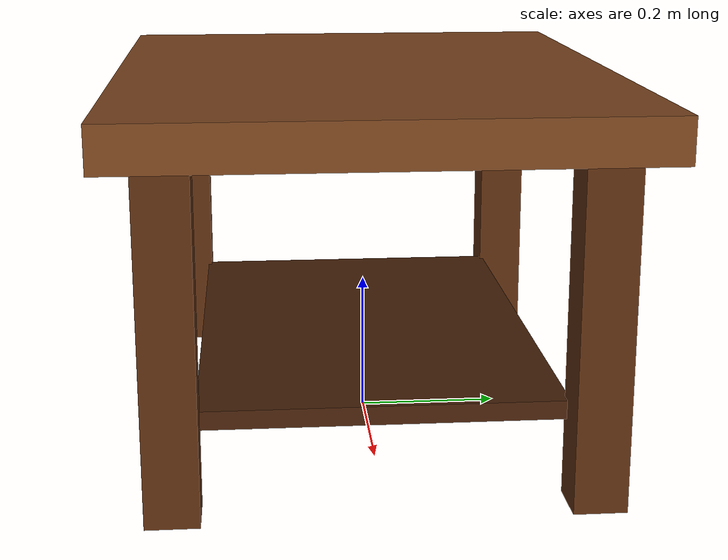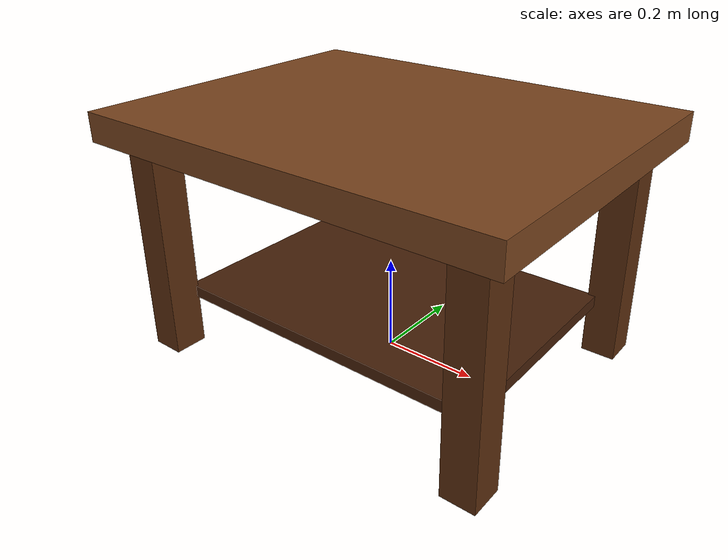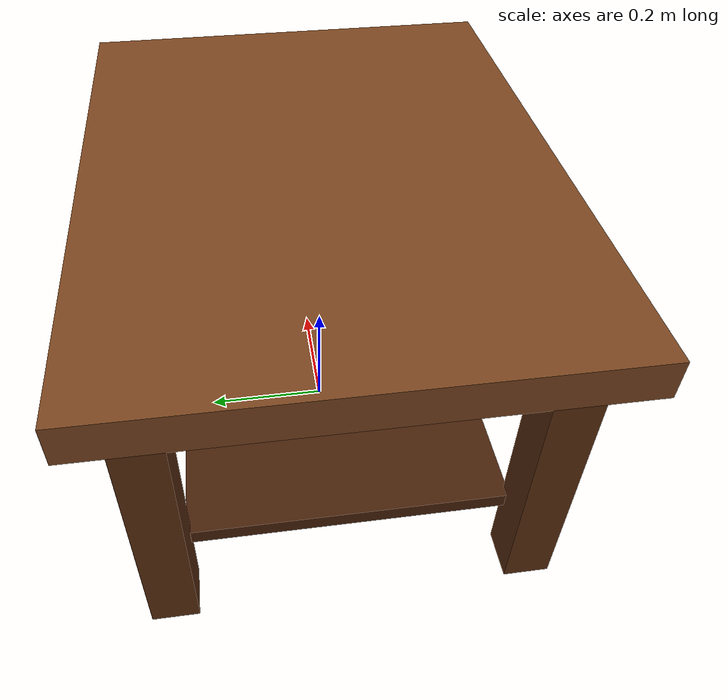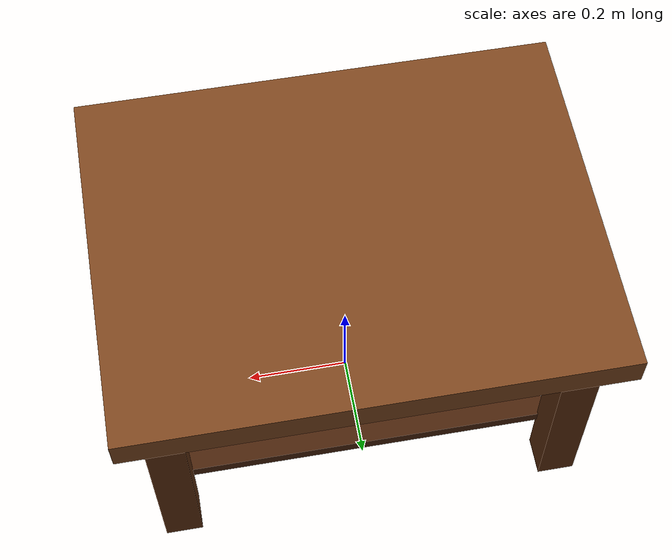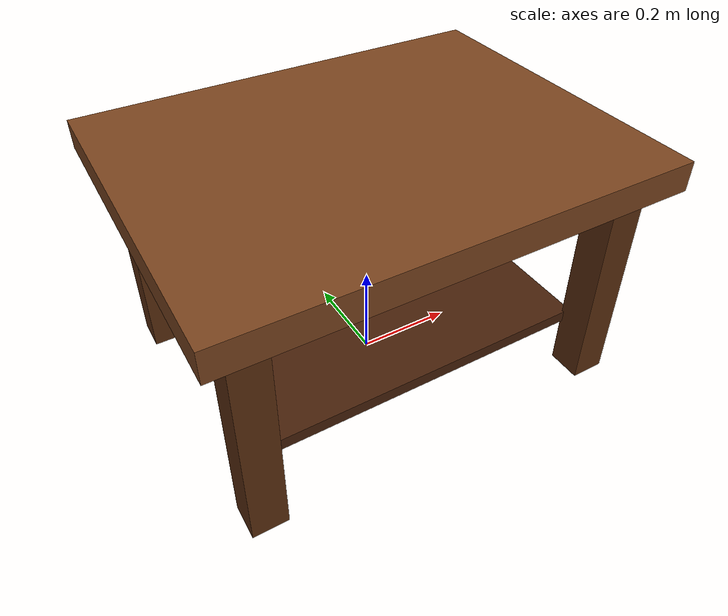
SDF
<?xml version="1.0" ?>
<sdf version="1.6">
  <model name="writing_table">
    <static>true</static>

    <!-- A 0.9 m x 0.70 m work surface; top face is z=0.517 m so the
         4-mm paper rests flush with it. -->
    <link name="table_top">
      <pose>0 0 0.487 0 0 0</pose>
      <collision name="collision">
        <geometry><box><size>0.90 0.70 0.06</size></box></geometry>
      </collision>
      <visual name="visual">
        <geometry><box><size>0.90 0.70 0.06</size></box></geometry>
        <material>
          <ambient>0.20 0.11 0.055 1</ambient>
          <diffuse>0.48 0.27 0.12 1</diffuse>
          <specular>0.12 0.08 0.04 1</specular>
        </material>
      </visual>
    </link>

    <!-- Four square legs.  They are separate links because a static SDF model
         does not need joints; this keeps the model simple and robust in Gazebo. -->
    <link name="leg_front_left">
      <pose>-0.37 -0.27 0.23 0 0 0</pose>
      <collision name="collision"><geometry><box><size>0.07 0.07 0.46</size></box></geometry></collision>
      <visual name="visual"><geometry><box><size>0.07 0.07 0.46</size></box></geometry><material><ambient>0.16 0.08 0.03 1</ambient><diffuse>0.36 0.18 0.06 1</diffuse></material></visual>
    </link>
    <link name="leg_front_right">
      <pose>0.37 -0.27 0.23 0 0 0</pose>
      <collision name="collision"><geometry><box><size>0.07 0.07 0.46</size></box></geometry></collision>
      <visual name="visual"><geometry><box><size>0.07 0.07 0.46</size></box></geometry><material><ambient>0.16 0.08 0.03 1</ambient><diffuse>0.36 0.18 0.06 1</diffuse></material></visual>
    </link>
    <link name="leg_back_left">
      <pose>-0.37 0.27 0.23 0 0 0</pose>
      <collision name="collision"><geometry><box><size>0.07 0.07 0.46</size></box></geometry></collision>
      <visual name="visual"><geometry><box><size>0.07 0.07 0.46</size></box></geometry><material><ambient>0.16 0.08 0.03 1</ambient><diffuse>0.36 0.18 0.06 1</diffuse></material></visual>
    </link>
    <link name="leg_back_right">
      <pose>0.37 0.27 0.23 0 0 0</pose>
      <collision name="collision"><geometry><box><size>0.07 0.07 0.46</size></box></geometry></collision>
      <visual name="visual"><geometry><box><size>0.07 0.07 0.46</size></box></geometry><material><ambient>0.16 0.08 0.03 1</ambient><diffuse>0.36 0.18 0.06 1</diffuse></material></visual>
    </link>

    <!-- A thin lower shelf improves the scene silhouette without interfering
         with the arm's writing workspace. -->
    <link name="lower_shelf">
      <pose>0 0 0.12 0 0 0</pose>
      <collision name="collision"><geometry><box><size>0.70 0.48 0.025</size></box></geometry></collision>
      <visual name="visual"><geometry><box><size>0.70 0.48 0.025</size></box></geometry><material><ambient>0.12 0.06 0.02 1</ambient><diffuse>0.28 0.13 0.04 1</diffuse></material></visual>
    </link>
  </model>
</sdf>
